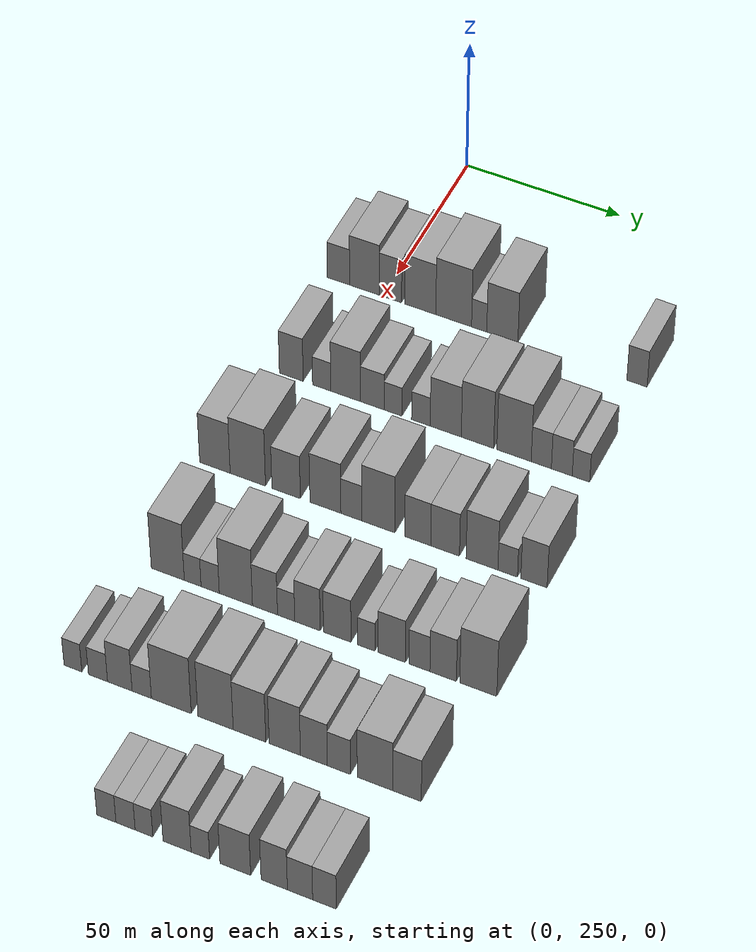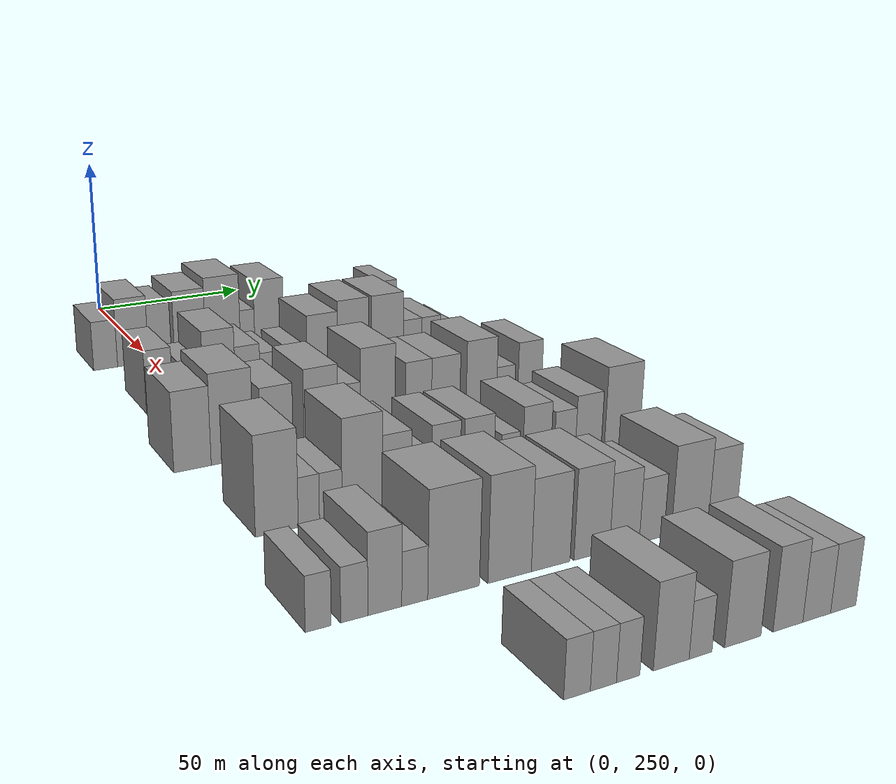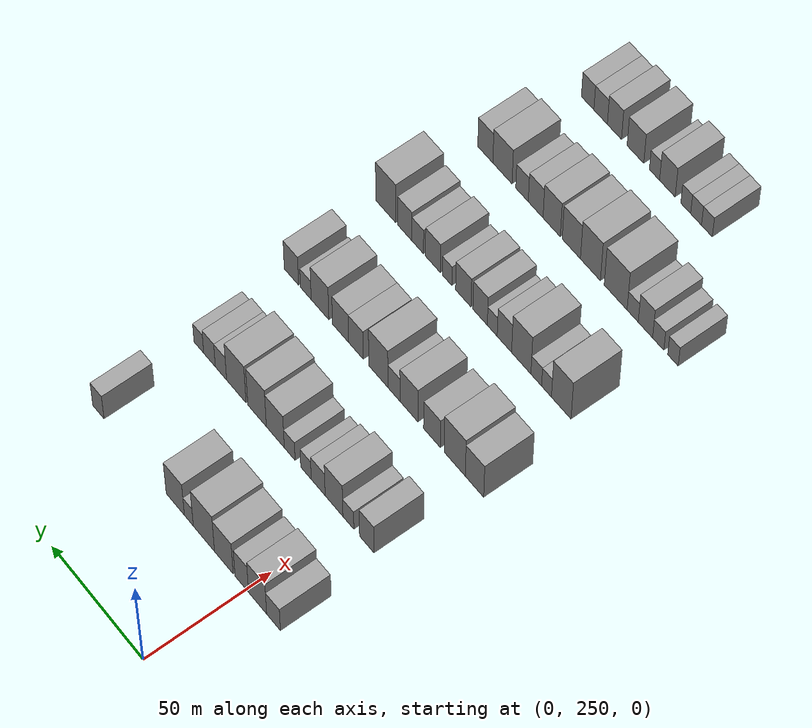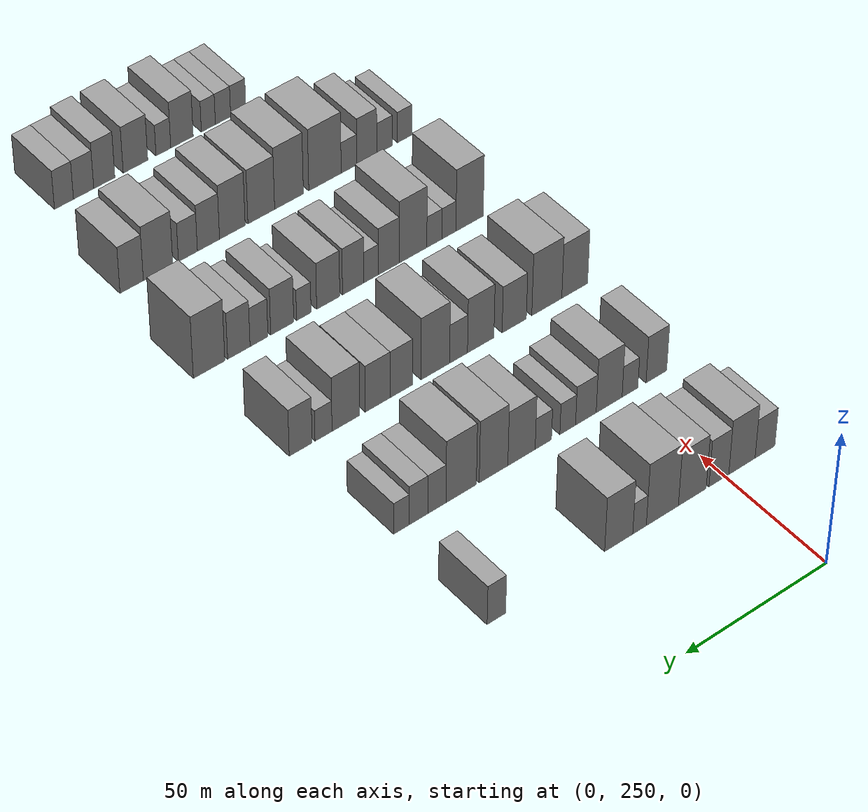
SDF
<sdf version="1.6">
 <world name="default">
  <model name="building_94">
   <static>1</static>
   <pose>50.0000 235.4547 0 0.000000 0.000000 0.000000</pose>
   <link name="link">
    <pose>0 0 7.50 0 0 0</pose>
    <collision name="collision"><geometry><box><size>20.0000 7.2835 15.0000</size></box></geometry></collision>
    <visual name="visual">
     <cast_shadows>0</cast_shadows>
     <geometry><box><size>20.0000 7.2835 15.0000</size></box></geometry>
     <material>
      <script>
       <uri>model://grey_wall/materials/scripts</uri>
       <uri>model://grey_wall/materials/textures</uri>
       <name>vrc/grey_wall</name>
      </script>
     </material>
    </visual>
   </link>
  </model>
  <model name="building_95">
   <static>1</static>
   <pose>50.0000 243.9097 0 0.000000 0.000000 0.000000</pose>
   <link name="link">
    <pose>0 0 10.50 0 0 0</pose>
    <collision name="collision"><geometry><box><size>20.0000 9.6265 21.0000</size></box></geometry></collision>
    <visual name="visual">
     <cast_shadows>0</cast_shadows>
     <geometry><box><size>20.0000 9.6265 21.0000</size></box></geometry>
     <material>
      <script>
       <uri>model://grey_wall/materials/scripts</uri>
       <uri>model://grey_wall/materials/textures</uri>
       <name>vrc/grey_wall</name>
      </script>
     </material>
    </visual>
   </link>
  </model>
  <model name="building_96">
   <static>1</static>
   <pose>50.0000 252.3314 0 0.000000 0.000000 0.000000</pose>
   <link name="link">
    <pose>0 0 9.00 0 0 0</pose>
    <collision name="collision"><geometry><box><size>20.0000 7.2169 18.0000</size></box></geometry></collision>
    <visual name="visual">
     <cast_shadows>0</cast_shadows>
     <geometry><box><size>20.0000 7.2169 18.0000</size></box></geometry>
     <material>
      <script>
       <uri>model://grey_wall/materials/scripts</uri>
       <uri>model://grey_wall/materials/textures</uri>
       <name>vrc/grey_wall</name>
      </script>
     </material>
    </visual>
   </link>
  </model>
  <model name="building_97">
   <static>1</static>
   <pose>50.0000 261.9530 0 0.000000 0.000000 0.000000</pose>
   <link name="link">
    <pose>0 0 10.50 0 0 0</pose>
    <collision name="collision"><geometry><box><size>20.0000 10.0264 21.0000</size></box></geometry></collision>
    <visual name="visual">
     <cast_shadows>0</cast_shadows>
     <geometry><box><size>20.0000 10.0264 21.0000</size></box></geometry>
     <material>
      <script>
       <uri>model://grey_wall/materials/scripts</uri>
       <uri>model://grey_wall/materials/textures</uri>
       <name>vrc/grey_wall</name>
      </script>
     </material>
    </visual>
   </link>
  </model>
  <model name="building_98">
   <static>1</static>
   <pose>50.0000 272.6972 0 0.000000 0.000000 0.000000</pose>
   <link name="link">
    <pose>0 0 12.00 0 0 0</pose>
    <collision name="collision"><geometry><box><size>20.0000 11.4619 24.0000</size></box></geometry></collision>
    <visual name="visual">
     <cast_shadows>0</cast_shadows>
     <geometry><box><size>20.0000 11.4619 24.0000</size></box></geometry>
     <material>
      <script>
       <uri>model://grey_wall/materials/scripts</uri>
       <uri>model://grey_wall/materials/textures</uri>
       <name>vrc/grey_wall</name>
      </script>
     </material>
    </visual>
   </link>
  </model>
  <model name="building_99">
   <static>1</static>
   <pose>50.0000 280.8445 0 0.000000 0.000000 0.000000</pose>
   <link name="link">
    <pose>0 0 6.00 0 0 0</pose>
    <collision name="collision"><geometry><box><size>20.0000 4.8327 12.0000</size></box></geometry></collision>
    <visual name="visual">
     <cast_shadows>0</cast_shadows>
     <geometry><box><size>20.0000 4.8327 12.0000</size></box></geometry>
     <material>
      <script>
       <uri>model://grey_wall/materials/scripts</uri>
       <uri>model://grey_wall/materials/textures</uri>
       <name>vrc/grey_wall</name>
      </script>
     </material>
    </visual>
   </link>
  </model>
  <model name="building_100">
   <static>1</static>
   <pose>50.0000 288.2170 0 0.000000 0.000000 0.000000</pose>
   <link name="link">
    <pose>0 0 10.50 0 0 0</pose>
    <collision name="collision"><geometry><box><size>20.0000 9.9124 21.0000</size></box></geometry></collision>
    <visual name="visual">
     <cast_shadows>0</cast_shadows>
     <geometry><box><size>20.0000 9.9124 21.0000</size></box></geometry>
     <material>
      <script>
       <uri>model://grey_wall/materials/scripts</uri>
       <uri>model://grey_wall/materials/textures</uri>
       <name>vrc/grey_wall</name>
      </script>
     </material>
    </visual>
   </link>
  </model>
  <model name="building_101">
   <static>1</static>
   <pose>50.0000 330.6214 0 0.000000 0.000000 0.000000</pose>
   <link name="link">
    <pose>0 0 7.50 0 0 0</pose>
    <collision name="collision"><geometry><box><size>20.0000 6.2988 15.0000</size></box></geometry></collision>
    <visual name="visual">
     <cast_shadows>0</cast_shadows>
     <geometry><box><size>20.0000 6.2988 15.0000</size></box></geometry>
     <material>
      <script>
       <uri>model://grey_wall/materials/scripts</uri>
       <uri>model://grey_wall/materials/textures</uri>
       <name>vrc/grey_wall</name>
      </script>
     </material>
    </visual>
   </link>
  </model>
  <model name="building_224">
   <static>1</static>
   <pose>90.0000 239.5042 0 0.000000 0.000000 0.000000</pose>
   <link name="link">
    <pose>0 0 9.00 0 0 0</pose>
    <collision name="collision"><geometry><box><size>20.0000 7.6293 18.0000</size></box></geometry></collision>
    <visual name="visual">
     <cast_shadows>0</cast_shadows>
     <geometry><box><size>20.0000 7.6293 18.0000</size></box></geometry>
     <material>
      <script>
       <uri>model://grey_wall/materials/scripts</uri>
       <uri>model://grey_wall/materials/textures</uri>
       <name>vrc/grey_wall</name>
      </script>
     </material>
    </visual>
   </link>
  </model>
  <model name="building_225">
   <static>1</static>
   <pose>90.0000 249.2200 0 0.000000 0.000000 0.000000</pose>
   <link name="link">
    <pose>0 0 6.00 0 0 0</pose>
    <collision name="collision"><geometry><box><size>20.0000 5.8024 12.0000</size></box></geometry></collision>
    <visual name="visual">
     <cast_shadows>0</cast_shadows>
     <geometry><box><size>20.0000 5.8024 12.0000</size></box></geometry>
     <material>
      <script>
       <uri>model://grey_wall/materials/scripts</uri>
       <uri>model://grey_wall/materials/textures</uri>
       <name>vrc/grey_wall</name>
      </script>
     </material>
    </visual>
   </link>
  </model>
  <model name="building_226">
   <static>1</static>
   <pose>90.0000 256.8421 0 0.000000 0.000000 0.000000</pose>
   <link name="link">
    <pose>0 0 10.50 0 0 0</pose>
    <collision name="collision"><geometry><box><size>20.0000 9.4418 21.0000</size></box></geometry></collision>
    <visual name="visual">
     <cast_shadows>0</cast_shadows>
     <geometry><box><size>20.0000 9.4418 21.0000</size></box></geometry>
     <material>
      <script>
       <uri>model://grey_wall/materials/scripts</uri>
       <uri>model://grey_wall/materials/textures</uri>
       <name>vrc/grey_wall</name>
      </script>
     </material>
    </visual>
   </link>
  </model>
  <model name="building_227">
   <static>1</static>
   <pose>90.0000 265.2929 0 0.000000 0.000000 0.000000</pose>
   <link name="link">
    <pose>0 0 7.50 0 0 0</pose>
    <collision name="collision"><geometry><box><size>20.0000 7.4597 15.0000</size></box></geometry></collision>
    <visual name="visual">
     <cast_shadows>0</cast_shadows>
     <geometry><box><size>20.0000 7.4597 15.0000</size></box></geometry>
     <material>
      <script>
       <uri>model://grey_wall/materials/scripts</uri>
       <uri>model://grey_wall/materials/textures</uri>
       <name>vrc/grey_wall</name>
      </script>
     </material>
    </visual>
   </link>
  </model>
  <model name="building_228">
   <static>1</static>
   <pose>90.0000 271.8470 0 0.000000 0.000000 0.000000</pose>
   <link name="link">
    <pose>0 0 6.00 0 0 0</pose>
    <collision name="collision"><geometry><box><size>20.0000 5.6486 12.0000</size></box></geometry></collision>
    <visual name="visual">
     <cast_shadows>0</cast_shadows>
     <geometry><box><size>20.0000 5.6486 12.0000</size></box></geometry>
     <material>
      <script>
       <uri>model://grey_wall/materials/scripts</uri>
       <uri>model://grey_wall/materials/textures</uri>
       <name>vrc/grey_wall</name>
      </script>
     </material>
    </visual>
   </link>
  </model>
  <model name="building_229">
   <static>1</static>
   <pose>90.0000 280.5936 0 0.000000 0.000000 0.000000</pose>
   <link name="link">
    <pose>0 0 6.00 0 0 0</pose>
    <collision name="collision"><geometry><box><size>20.0000 5.8447 12.0000</size></box></geometry></collision>
    <visual name="visual">
     <cast_shadows>0</cast_shadows>
     <geometry><box><size>20.0000 5.8447 12.0000</size></box></geometry>
     <material>
      <script>
       <uri>model://grey_wall/materials/scripts</uri>
       <uri>model://grey_wall/materials/textures</uri>
       <name>vrc/grey_wall</name>
      </script>
     </material>
    </visual>
   </link>
  </model>
  <model name="building_230">
   <static>1</static>
   <pose>90.0000 288.3706 0 0.000000 0.000000 0.000000</pose>
   <link name="link">
    <pose>0 0 10.50 0 0 0</pose>
    <collision name="collision"><geometry><box><size>20.0000 9.7092 21.0000</size></box></geometry></collision>
    <visual name="visual">
     <cast_shadows>0</cast_shadows>
     <geometry><box><size>20.0000 9.7092 21.0000</size></box></geometry>
     <material>
      <script>
       <uri>model://grey_wall/materials/scripts</uri>
       <uri>model://grey_wall/materials/textures</uri>
       <name>vrc/grey_wall</name>
      </script>
     </material>
    </visual>
   </link>
  </model>
  <model name="building_231">
   <static>1</static>
   <pose>90.0000 298.2600 0 0.000000 0.000000 0.000000</pose>
   <link name="link">
    <pose>0 0 12.00 0 0 0</pose>
    <collision name="collision"><geometry><box><size>20.0000 10.0698 24.0000</size></box></geometry></collision>
    <visual name="visual">
     <cast_shadows>0</cast_shadows>
     <geometry><box><size>20.0000 10.0698 24.0000</size></box></geometry>
     <material>
      <script>
       <uri>model://grey_wall/materials/scripts</uri>
       <uri>model://grey_wall/materials/textures</uri>
       <name>vrc/grey_wall</name>
      </script>
     </material>
    </visual>
   </link>
  </model>
  <model name="building_232">
   <static>1</static>
   <pose>90.0000 309.6060 0 0.000000 0.000000 0.000000</pose>
   <link name="link">
    <pose>0 0 12.00 0 0 0</pose>
    <collision name="collision"><geometry><box><size>20.0000 10.6221 24.0000</size></box></geometry></collision>
    <visual name="visual">
     <cast_shadows>0</cast_shadows>
     <geometry><box><size>20.0000 10.6221 24.0000</size></box></geometry>
     <material>
      <script>
       <uri>model://grey_wall/materials/scripts</uri>
       <uri>model://grey_wall/materials/textures</uri>
       <name>vrc/grey_wall</name>
      </script>
     </material>
    </visual>
   </link>
  </model>
  <model name="building_233">
   <static>1</static>
   <pose>90.0000 318.0301 0 0.000000 0.000000 0.000000</pose>
   <link name="link">
    <pose>0 0 7.50 0 0 0</pose>
    <collision name="collision"><geometry><box><size>20.0000 6.2261 15.0000</size></box></geometry></collision>
    <visual name="visual">
     <cast_shadows>0</cast_shadows>
     <geometry><box><size>20.0000 6.2261 15.0000</size></box></geometry>
     <material>
      <script>
       <uri>model://grey_wall/materials/scripts</uri>
       <uri>model://grey_wall/materials/textures</uri>
       <name>vrc/grey_wall</name>
      </script>
     </material>
    </visual>
   </link>
  </model>
  <model name="building_234">
   <static>1</static>
   <pose>90.0000 324.3517 0 0.000000 0.000000 0.000000</pose>
   <link name="link">
    <pose>0 0 7.50 0 0 0</pose>
    <collision name="collision"><geometry><box><size>20.0000 6.4171 15.0000</size></box></geometry></collision>
    <visual name="visual">
     <cast_shadows>0</cast_shadows>
     <geometry><box><size>20.0000 6.4171 15.0000</size></box></geometry>
     <material>
      <script>
       <uri>model://grey_wall/materials/scripts</uri>
       <uri>model://grey_wall/materials/textures</uri>
       <name>vrc/grey_wall</name>
      </script>
     </material>
    </visual>
   </link>
  </model>
  <model name="building_235">
   <static>1</static>
   <pose>90.0000 330.2365 0 0.000000 0.000000 0.000000</pose>
   <link name="link">
    <pose>0 0 6.00 0 0 0</pose>
    <collision name="collision"><geometry><box><size>20.0000 5.3525 12.0000</size></box></geometry></collision>
    <visual name="visual">
     <cast_shadows>0</cast_shadows>
     <geometry><box><size>20.0000 5.3525 12.0000</size></box></geometry>
     <material>
      <script>
       <uri>model://grey_wall/materials/scripts</uri>
       <uri>model://grey_wall/materials/textures</uri>
       <name>vrc/grey_wall</name>
      </script>
     </material>
    </visual>
   </link>
  </model>
  <model name="building_366">
   <static>1</static>
   <pose>130.0000 235.0115 0 0.000000 0.000000 0.000000</pose>
   <link name="link">
    <pose>0 0 10.50 0 0 0</pose>
    <collision name="collision"><geometry><box><size>20.0000 9.6157 21.0000</size></box></geometry></collision>
    <visual name="visual">
     <cast_shadows>0</cast_shadows>
     <geometry><box><size>20.0000 9.6157 21.0000</size></box></geometry>
     <material>
      <script>
       <uri>model://grey_wall/materials/scripts</uri>
       <uri>model://grey_wall/materials/textures</uri>
       <name>vrc/grey_wall</name>
      </script>
     </material>
    </visual>
   </link>
  </model>
  <model name="building_367">
   <static>1</static>
   <pose>130.0000 245.3782 0 0.000000 0.000000 0.000000</pose>
   <link name="link">
    <pose>0 0 12.00 0 0 0</pose>
    <collision name="collision"><geometry><box><size>20.0000 11.1177 24.0000</size></box></geometry></collision>
    <visual name="visual">
     <cast_shadows>0</cast_shadows>
     <geometry><box><size>20.0000 11.1177 24.0000</size></box></geometry>
     <material>
      <script>
       <uri>model://grey_wall/materials/scripts</uri>
       <uri>model://grey_wall/materials/textures</uri>
       <name>vrc/grey_wall</name>
      </script>
     </material>
    </visual>
   </link>
  </model>
  <model name="building_368">
   <static>1</static>
   <pose>130.0000 257.3779 0 0.000000 0.000000 0.000000</pose>
   <link name="link">
    <pose>0 0 9.00 0 0 0</pose>
    <collision name="collision"><geometry><box><size>20.0000 8.8816 18.0000</size></box></geometry></collision>
    <visual name="visual">
     <cast_shadows>0</cast_shadows>
     <geometry><box><size>20.0000 8.8816 18.0000</size></box></geometry>
     <material>
      <script>
       <uri>model://grey_wall/materials/scripts</uri>
       <uri>model://grey_wall/materials/textures</uri>
       <name>vrc/grey_wall</name>
      </script>
     </material>
    </visual>
   </link>
  </model>
  <model name="building_369">
   <static>1</static>
   <pose>130.0000 269.6115 0 0.000000 0.000000 0.000000</pose>
   <link name="link">
    <pose>0 0 10.50 0 0 0</pose>
    <collision name="collision"><geometry><box><size>20.0000 9.5856 21.0000</size></box></geometry></collision>
    <visual name="visual">
     <cast_shadows>0</cast_shadows>
     <geometry><box><size>20.0000 9.5856 21.0000</size></box></geometry>
     <material>
      <script>
       <uri>model://grey_wall/materials/scripts</uri>
       <uri>model://grey_wall/materials/textures</uri>
       <name>vrc/grey_wall</name>
      </script>
     </material>
    </visual>
   </link>
  </model>
  <model name="building_370">
   <static>1</static>
   <pose>130.0000 277.6211 0 0.000000 0.000000 0.000000</pose>
   <link name="link">
    <pose>0 0 7.50 0 0 0</pose>
    <collision name="collision"><geometry><box><size>20.0000 6.4337 15.0000</size></box></geometry></collision>
    <visual name="visual">
     <cast_shadows>0</cast_shadows>
     <geometry><box><size>20.0000 6.4337 15.0000</size></box></geometry>
     <material>
      <script>
       <uri>model://grey_wall/materials/scripts</uri>
       <uri>model://grey_wall/materials/textures</uri>
       <name>vrc/grey_wall</name>
      </script>
     </material>
    </visual>
   </link>
  </model>
  <model name="building_371">
   <static>1</static>
   <pose>130.0000 285.9586 0 0.000000 0.000000 0.000000</pose>
   <link name="link">
    <pose>0 0 12.00 0 0 0</pose>
    <collision name="collision"><geometry><box><size>20.0000 10.2414 24.0000</size></box></geometry></collision>
    <visual name="visual">
     <cast_shadows>0</cast_shadows>
     <geometry><box><size>20.0000 10.2414 24.0000</size></box></geometry>
     <material>
      <script>
       <uri>model://grey_wall/materials/scripts</uri>
       <uri>model://grey_wall/materials/textures</uri>
       <name>vrc/grey_wall</name>
      </script>
     </material>
    </visual>
   </link>
  </model>
  <model name="building_372">
   <static>1</static>
   <pose>130.0000 298.0460 0 0.000000 0.000000 0.000000</pose>
   <link name="link">
    <pose>0 0 9.00 0 0 0</pose>
    <collision name="collision"><geometry><box><size>20.0000 7.9334 18.0000</size></box></geometry></collision>
    <visual name="visual">
     <cast_shadows>0</cast_shadows>
     <geometry><box><size>20.0000 7.9334 18.0000</size></box></geometry>
     <material>
      <script>
       <uri>model://grey_wall/materials/scripts</uri>
       <uri>model://grey_wall/materials/textures</uri>
       <name>vrc/grey_wall</name>
      </script>
     </material>
    </visual>
   </link>
  </model>
  <model name="building_373">
   <static>1</static>
   <pose>130.0000 306.3938 0 0.000000 0.000000 0.000000</pose>
   <link name="link">
    <pose>0 0 9.00 0 0 0</pose>
    <collision name="collision"><geometry><box><size>20.0000 8.7620 18.0000</size></box></geometry></collision>
    <visual name="visual">
     <cast_shadows>0</cast_shadows>
     <geometry><box><size>20.0000 8.7620 18.0000</size></box></geometry>
     <material>
      <script>
       <uri>model://grey_wall/materials/scripts</uri>
       <uri>model://grey_wall/materials/textures</uri>
       <name>vrc/grey_wall</name>
      </script>
     </material>
    </visual>
   </link>
  </model>
  <model name="building_374">
   <static>1</static>
   <pose>130.0000 317.5948 0 0.000000 0.000000 0.000000</pose>
   <link name="link">
    <pose>0 0 10.50 0 0 0</pose>
    <collision name="collision"><geometry><box><size>20.0000 9.6400 21.0000</size></box></geometry></collision>
    <visual name="visual">
     <cast_shadows>0</cast_shadows>
     <geometry><box><size>20.0000 9.6400 21.0000</size></box></geometry>
     <material>
      <script>
       <uri>model://grey_wall/materials/scripts</uri>
       <uri>model://grey_wall/materials/textures</uri>
       <name>vrc/grey_wall</name>
      </script>
     </material>
    </visual>
   </link>
  </model>
  <model name="building_375">
   <static>1</static>
   <pose>130.0000 325.3711 0 0.000000 0.000000 0.000000</pose>
   <link name="link">
    <pose>0 0 6.00 0 0 0</pose>
    <collision name="collision"><geometry><box><size>20.0000 5.9127 12.0000</size></box></geometry></collision>
    <visual name="visual">
     <cast_shadows>0</cast_shadows>
     <geometry><box><size>20.0000 5.9127 12.0000</size></box></geometry>
     <material>
      <script>
       <uri>model://grey_wall/materials/scripts</uri>
       <uri>model://grey_wall/materials/textures</uri>
       <name>vrc/grey_wall</name>
      </script>
     </material>
    </visual>
   </link>
  </model>
  <model name="building_376">
   <static>1</static>
   <pose>130.0000 333.2766 0 0.000000 0.000000 0.000000</pose>
   <link name="link">
    <pose>0 0 9.00 0 0 0</pose>
    <collision name="collision"><geometry><box><size>20.0000 7.8982 18.0000</size></box></geometry></collision>
    <visual name="visual">
     <cast_shadows>0</cast_shadows>
     <geometry><box><size>20.0000 7.8982 18.0000</size></box></geometry>
     <material>
      <script>
       <uri>model://grey_wall/materials/scripts</uri>
       <uri>model://grey_wall/materials/textures</uri>
       <name>vrc/grey_wall</name>
      </script>
     </material>
    </visual>
   </link>
  </model>
  <model name="building_503">
   <static>1</static>
   <pose>170.0000 240.6176 0 0.000000 0.000000 0.000000</pose>
   <link name="link">
    <pose>0 0 12.00 0 0 0</pose>
    <collision name="collision"><geometry><box><size>20.0000 10.2122 24.0000</size></box></geometry></collision>
    <visual name="visual">
     <cast_shadows>0</cast_shadows>
     <geometry><box><size>20.0000 10.2122 24.0000</size></box></geometry>
     <material>
      <script>
       <uri>model://grey_wall/materials/scripts</uri>
       <uri>model://grey_wall/materials/textures</uri>
       <name>vrc/grey_wall</name>
      </script>
     </material>
    </visual>
   </link>
  </model>
  <model name="building_504">
   <static>1</static>
   <pose>170.0000 248.3047 0 0.000000 0.000000 0.000000</pose>
   <link name="link">
    <pose>0 0 6.00 0 0 0</pose>
    <collision name="collision"><geometry><box><size>20.0000 5.1620 12.0000</size></box></geometry></collision>
    <visual name="visual">
     <cast_shadows>0</cast_shadows>
     <geometry><box><size>20.0000 5.1620 12.0000</size></box></geometry>
     <material>
      <script>
       <uri>model://grey_wall/materials/scripts</uri>
       <uri>model://grey_wall/materials/textures</uri>
       <name>vrc/grey_wall</name>
      </script>
     </material>
    </visual>
   </link>
  </model>
  <model name="building_505">
   <static>1</static>
   <pose>170.0000 253.6918 0 0.000000 0.000000 0.000000</pose>
   <link name="link">
    <pose>0 0 6.00 0 0 0</pose>
    <collision name="collision"><geometry><box><size>20.0000 5.6122 12.0000</size></box></geometry></collision>
    <visual name="visual">
     <cast_shadows>0</cast_shadows>
     <geometry><box><size>20.0000 5.6122 12.0000</size></box></geometry>
     <material>
      <script>
       <uri>model://grey_wall/materials/scripts</uri>
       <uri>model://grey_wall/materials/textures</uri>
       <name>vrc/grey_wall</name>
      </script>
     </material>
    </visual>
   </link>
  </model>
  <model name="building_506">
   <static>1</static>
   <pose>170.0000 261.5835 0 0.000000 0.000000 0.000000</pose>
   <link name="link">
    <pose>0 0 12.00 0 0 0</pose>
    <collision name="collision"><geometry><box><size>20.0000 10.1713 24.0000</size></box></geometry></collision>
    <visual name="visual">
     <cast_shadows>0</cast_shadows>
     <geometry><box><size>20.0000 10.1713 24.0000</size></box></geometry>
     <material>
      <script>
       <uri>model://grey_wall/materials/scripts</uri>
       <uri>model://grey_wall/materials/textures</uri>
       <name>vrc/grey_wall</name>
      </script>
     </material>
    </visual>
   </link>
  </model>
  <model name="building_507">
   <static>1</static>
   <pose>170.0000 270.4888 0 0.000000 0.000000 0.000000</pose>
   <link name="link">
    <pose>0 0 9.00 0 0 0</pose>
    <collision name="collision"><geometry><box><size>20.0000 7.6393 18.0000</size></box></geometry></collision>
    <visual name="visual">
     <cast_shadows>0</cast_shadows>
     <geometry><box><size>20.0000 7.6393 18.0000</size></box></geometry>
     <material>
      <script>
       <uri>model://grey_wall/materials/scripts</uri>
       <uri>model://grey_wall/materials/textures</uri>
       <name>vrc/grey_wall</name>
      </script>
     </material>
    </visual>
   </link>
  </model>
  <model name="building_508">
   <static>1</static>
   <pose>170.0000 276.9290 0 0.000000 0.000000 0.000000</pose>
   <link name="link">
    <pose>0 0 6.00 0 0 0</pose>
    <collision name="collision"><geometry><box><size>20.0000 5.2411 12.0000</size></box></geometry></collision>
    <visual name="visual">
     <cast_shadows>0</cast_shadows>
     <geometry><box><size>20.0000 5.2411 12.0000</size></box></geometry>
     <material>
      <script>
       <uri>model://grey_wall/materials/scripts</uri>
       <uri>model://grey_wall/materials/textures</uri>
       <name>vrc/grey_wall</name>
      </script>
     </material>
    </visual>
   </link>
  </model>
  <model name="building_509">
   <static>1</static>
   <pose>170.0000 283.4026 0 0.000000 0.000000 0.000000</pose>
   <link name="link">
    <pose>0 0 9.00 0 0 0</pose>
    <collision name="collision"><geometry><box><size>20.0000 7.7061 18.0000</size></box></geometry></collision>
    <visual name="visual">
     <cast_shadows>0</cast_shadows>
     <geometry><box><size>20.0000 7.7061 18.0000</size></box></geometry>
     <material>
      <script>
       <uri>model://grey_wall/materials/scripts</uri>
       <uri>model://grey_wall/materials/textures</uri>
       <name>vrc/grey_wall</name>
      </script>
     </material>
    </visual>
   </link>
  </model>
  <model name="building_510">
   <static>1</static>
   <pose>170.0000 292.4004 0 0.000000 0.000000 0.000000</pose>
   <link name="link">
    <pose>0 0 9.00 0 0 0</pose>
    <collision name="collision"><geometry><box><size>20.0000 8.2895 18.0000</size></box></geometry></collision>
    <visual name="visual">
     <cast_shadows>0</cast_shadows>
     <geometry><box><size>20.0000 8.2895 18.0000</size></box></geometry>
     <material>
      <script>
       <uri>model://grey_wall/materials/scripts</uri>
       <uri>model://grey_wall/materials/textures</uri>
       <name>vrc/grey_wall</name>
      </script>
     </material>
    </visual>
   </link>
  </model>
  <model name="building_511">
   <static>1</static>
   <pose>170.0000 301.1281 0 0.000000 0.000000 0.000000</pose>
   <link name="link">
    <pose>0 0 6.00 0 0 0</pose>
    <collision name="collision"><geometry><box><size>20.0000 5.1659 12.0000</size></box></geometry></collision>
    <visual name="visual">
     <cast_shadows>0</cast_shadows>
     <geometry><box><size>20.0000 5.1659 12.0000</size></box></geometry>
     <material>
      <script>
       <uri>model://grey_wall/materials/scripts</uri>
       <uri>model://grey_wall/materials/textures</uri>
       <name>vrc/grey_wall</name>
      </script>
     </material>
    </visual>
   </link>
  </model>
  <model name="building_512">
   <static>1</static>
   <pose>170.0000 308.7849 0 0.000000 0.000000 0.000000</pose>
   <link name="link">
    <pose>0 0 9.00 0 0 0</pose>
    <collision name="collision"><geometry><box><size>20.0000 8.1478 18.0000</size></box></geometry></collision>
    <visual name="visual">
     <cast_shadows>0</cast_shadows>
     <geometry><box><size>20.0000 8.1478 18.0000</size></box></geometry>
     <material>
      <script>
       <uri>model://grey_wall/materials/scripts</uri>
       <uri>model://grey_wall/materials/textures</uri>
       <name>vrc/grey_wall</name>
      </script>
     </material>
    </visual>
   </link>
  </model>
  <model name="building_513">
   <static>1</static>
   <pose>170.0000 316.9971 0 0.000000 0.000000 0.000000</pose>
   <link name="link">
    <pose>0 0 7.50 0 0 0</pose>
    <collision name="collision"><geometry><box><size>20.0000 6.2766 15.0000</size></box></geometry></collision>
    <visual name="visual">
     <cast_shadows>0</cast_shadows>
     <geometry><box><size>20.0000 6.2766 15.0000</size></box></geometry>
     <material>
      <script>
       <uri>model://grey_wall/materials/scripts</uri>
       <uri>model://grey_wall/materials/textures</uri>
       <name>vrc/grey_wall</name>
      </script>
     </material>
    </visual>
   </link>
  </model>
  <model name="building_514">
   <static>1</static>
   <pose>170.0000 324.0505 0 0.000000 0.000000 0.000000</pose>
   <link name="link">
    <pose>0 0 9.00 0 0 0</pose>
    <collision name="collision"><geometry><box><size>20.0000 7.8302 18.0000</size></box></geometry></collision>
    <visual name="visual">
     <cast_shadows>0</cast_shadows>
     <geometry><box><size>20.0000 7.8302 18.0000</size></box></geometry>
     <material>
      <script>
       <uri>model://grey_wall/materials/scripts</uri>
       <uri>model://grey_wall/materials/textures</uri>
       <name>vrc/grey_wall</name>
      </script>
     </material>
    </visual>
   </link>
  </model>
  <model name="building_515">
   <static>1</static>
   <pose>170.0000 334.4318 0 0.000000 0.000000 0.000000</pose>
   <link name="link">
    <pose>0 0 12.00 0 0 0</pose>
    <collision name="collision"><geometry><box><size>20.0000 10.9324 24.0000</size></box></geometry></collision>
    <visual name="visual">
     <cast_shadows>0</cast_shadows>
     <geometry><box><size>20.0000 10.9324 24.0000</size></box></geometry>
     <material>
      <script>
       <uri>model://grey_wall/materials/scripts</uri>
       <uri>model://grey_wall/materials/textures</uri>
       <name>vrc/grey_wall</name>
      </script>
     </material>
    </visual>
   </link>
  </model>
  <model name="building_647">
   <static>1</static>
   <pose>210.0000 232.3778 0 0.000000 0.000000 0.000000</pose>
   <link name="link">
    <pose>0 0 6.00 0 0 0</pose>
    <collision name="collision"><geometry><box><size>20.0000 5.4293 12.0000</size></box></geometry></collision>
    <visual name="visual">
     <cast_shadows>0</cast_shadows>
     <geometry><box><size>20.0000 5.4293 12.0000</size></box></geometry>
     <material>
      <script>
       <uri>model://grey_wall/materials/scripts</uri>
       <uri>model://grey_wall/materials/textures</uri>
       <name>vrc/grey_wall</name>
      </script>
     </material>
    </visual>
   </link>
  </model>
  <model name="building_648">
   <static>1</static>
   <pose>210.0000 240.0018 0 0.000000 0.000000 0.000000</pose>
   <link name="link">
    <pose>0 0 6.00 0 0 0</pose>
    <collision name="collision"><geometry><box><size>20.0000 5.8187 12.0000</size></box></geometry></collision>
    <visual name="visual">
     <cast_shadows>0</cast_shadows>
     <geometry><box><size>20.0000 5.8187 12.0000</size></box></geometry>
     <material>
      <script>
       <uri>model://grey_wall/materials/scripts</uri>
       <uri>model://grey_wall/materials/textures</uri>
       <name>vrc/grey_wall</name>
      </script>
     </material>
    </visual>
   </link>
  </model>
  <model name="building_649">
   <static>1</static>
   <pose>210.0000 246.6503 0 0.000000 0.000000 0.000000</pose>
   <link name="link">
    <pose>0 0 9.00 0 0 0</pose>
    <collision name="collision"><geometry><box><size>20.0000 7.4784 18.0000</size></box></geometry></collision>
    <visual name="visual">
     <cast_shadows>0</cast_shadows>
     <geometry><box><size>20.0000 7.4784 18.0000</size></box></geometry>
     <material>
      <script>
       <uri>model://grey_wall/materials/scripts</uri>
       <uri>model://grey_wall/materials/textures</uri>
       <name>vrc/grey_wall</name>
      </script>
     </material>
    </visual>
   </link>
  </model>
  <model name="building_650">
   <static>1</static>
   <pose>210.0000 253.3043 0 0.000000 0.000000 0.000000</pose>
   <link name="link">
    <pose>0 0 6.00 0 0 0</pose>
    <collision name="collision"><geometry><box><size>20.0000 5.8296 12.0000</size></box></geometry></collision>
    <visual name="visual">
     <cast_shadows>0</cast_shadows>
     <geometry><box><size>20.0000 5.8296 12.0000</size></box></geometry>
     <material>
      <script>
       <uri>model://grey_wall/materials/scripts</uri>
       <uri>model://grey_wall/materials/textures</uri>
       <name>vrc/grey_wall</name>
      </script>
     </material>
    </visual>
   </link>
  </model>
  <model name="building_651">
   <static>1</static>
   <pose>210.0000 262.2163 0 0.000000 0.000000 0.000000</pose>
   <link name="link">
    <pose>0 0 12.00 0 0 0</pose>
    <collision name="collision"><geometry><box><size>20.0000 11.9945 24.0000</size></box></geometry></collision>
    <visual name="visual">
     <cast_shadows>0</cast_shadows>
     <geometry><box><size>20.0000 11.9945 24.0000</size></box></geometry>
     <material>
      <script>
       <uri>model://grey_wall/materials/scripts</uri>
       <uri>model://grey_wall/materials/textures</uri>
       <name>vrc/grey_wall</name>
      </script>
     </material>
    </visual>
   </link>
  </model>
  <model name="building_652">
   <static>1</static>
   <pose>210.0000 275.4855 0 0.000000 0.000000 0.000000</pose>
   <link name="link">
    <pose>0 0 12.00 0 0 0</pose>
    <collision name="collision"><geometry><box><size>20.0000 10.5439 24.0000</size></box></geometry></collision>
    <visual name="visual">
     <cast_shadows>0</cast_shadows>
     <geometry><box><size>20.0000 10.5439 24.0000</size></box></geometry>
     <material>
      <script>
       <uri>model://grey_wall/materials/scripts</uri>
       <uri>model://grey_wall/materials/textures</uri>
       <name>vrc/grey_wall</name>
      </script>
     </material>
    </visual>
   </link>
  </model>
  <model name="building_653">
   <static>1</static>
   <pose>210.0000 285.6100 0 0.000000 0.000000 0.000000</pose>
   <link name="link">
    <pose>0 0 10.50 0 0 0</pose>
    <collision name="collision"><geometry><box><size>20.0000 9.7050 21.0000</size></box></geometry></collision>
    <visual name="visual">
     <cast_shadows>0</cast_shadows>
     <geometry><box><size>20.0000 9.7050 21.0000</size></box></geometry>
     <material>
      <script>
       <uri>model://grey_wall/materials/scripts</uri>
       <uri>model://grey_wall/materials/textures</uri>
       <name>vrc/grey_wall</name>
      </script>
     </material>
    </visual>
   </link>
  </model>
  <model name="building_654">
   <static>1</static>
   <pose>210.0000 296.0754 0 0.000000 0.000000 0.000000</pose>
   <link name="link">
    <pose>0 0 10.50 0 0 0</pose>
    <collision name="collision"><geometry><box><size>20.0000 9.2256 21.0000</size></box></geometry></collision>
    <visual name="visual">
     <cast_shadows>0</cast_shadows>
     <geometry><box><size>20.0000 9.2256 21.0000</size></box></geometry>
     <material>
      <script>
       <uri>model://grey_wall/materials/scripts</uri>
       <uri>model://grey_wall/materials/textures</uri>
       <name>vrc/grey_wall</name>
      </script>
     </material>
    </visual>
   </link>
  </model>
  <model name="building_655">
   <static>1</static>
   <pose>210.0000 304.6527 0 0.000000 0.000000 0.000000</pose>
   <link name="link">
    <pose>0 0 9.00 0 0 0</pose>
    <collision name="collision"><geometry><box><size>20.0000 7.9290 18.0000</size></box></geometry></collision>
    <visual name="visual">
     <cast_shadows>0</cast_shadows>
     <geometry><box><size>20.0000 7.9290 18.0000</size></box></geometry>
     <material>
      <script>
       <uri>model://grey_wall/materials/scripts</uri>
       <uri>model://grey_wall/materials/textures</uri>
       <name>vrc/grey_wall</name>
      </script>
     </material>
    </visual>
   </link>
  </model>
  <model name="building_656">
   <static>1</static>
   <pose>210.0000 311.9929 0 0.000000 0.000000 0.000000</pose>
   <link name="link">
    <pose>0 0 7.50 0 0 0</pose>
    <collision name="collision"><geometry><box><size>20.0000 6.7514 15.0000</size></box></geometry></collision>
    <visual name="visual">
     <cast_shadows>0</cast_shadows>
     <geometry><box><size>20.0000 6.7514 15.0000</size></box></geometry>
     <material>
      <script>
       <uri>model://grey_wall/materials/scripts</uri>
       <uri>model://grey_wall/materials/textures</uri>
       <name>vrc/grey_wall</name>
      </script>
     </material>
    </visual>
   </link>
  </model>
  <model name="building_657">
   <static>1</static>
   <pose>210.0000 322.5721 0 0.000000 0.000000 0.000000</pose>
   <link name="link">
    <pose>0 0 10.50 0 0 0</pose>
    <collision name="collision"><geometry><box><size>20.0000 10.4071 21.0000</size></box></geometry></collision>
    <visual name="visual">
     <cast_shadows>0</cast_shadows>
     <geometry><box><size>20.0000 10.4071 21.0000</size></box></geometry>
     <material>
      <script>
       <uri>model://grey_wall/materials/scripts</uri>
       <uri>model://grey_wall/materials/textures</uri>
       <name>vrc/grey_wall</name>
      </script>
     </material>
    </visual>
   </link>
  </model>
  <model name="building_658">
   <static>1</static>
   <pose>210.0000 331.8721 0 0.000000 0.000000 0.000000</pose>
   <link name="link">
    <pose>0 0 9.00 0 0 0</pose>
    <collision name="collision"><geometry><box><size>20.0000 8.1927 18.0000</size></box></geometry></collision>
    <visual name="visual">
     <cast_shadows>0</cast_shadows>
     <geometry><box><size>20.0000 8.1927 18.0000</size></box></geometry>
     <material>
      <script>
       <uri>model://grey_wall/materials/scripts</uri>
       <uri>model://grey_wall/materials/textures</uri>
       <name>vrc/grey_wall</name>
      </script>
     </material>
    </visual>
   </link>
  </model>
  <model name="building_783">
   <static>1</static>
   <pose>250.0000 263.6373 0 0.000000 0.000000 0.000000</pose>
   <link name="link">
    <pose>0 0 6.00 0 0 0</pose>
    <collision name="collision"><geometry><box><size>20.0000 5.6426 12.0000</size></box></geometry></collision>
    <visual name="visual">
     <cast_shadows>0</cast_shadows>
     <geometry><box><size>20.0000 5.6426 12.0000</size></box></geometry>
     <material>
      <script>
       <uri>model://grey_wall/materials/scripts</uri>
       <uri>model://grey_wall/materials/textures</uri>
       <name>vrc/grey_wall</name>
      </script>
     </material>
    </visual>
   </link>
  </model>
  <model name="building_784">
   <static>1</static>
   <pose>250.0000 269.2895 0 0.000000 0.000000 0.000000</pose>
   <link name="link">
    <pose>0 0 6.00 0 0 0</pose>
    <collision name="collision"><geometry><box><size>20.0000 5.6617 12.0000</size></box></geometry></collision>
    <visual name="visual">
     <cast_shadows>0</cast_shadows>
     <geometry><box><size>20.0000 5.6617 12.0000</size></box></geometry>
     <material>
      <script>
       <uri>model://grey_wall/materials/scripts</uri>
       <uri>model://grey_wall/materials/textures</uri>
       <name>vrc/grey_wall</name>
      </script>
     </material>
    </visual>
   </link>
  </model>
  <model name="building_785">
   <static>1</static>
   <pose>250.0000 274.7117 0 0.000000 0.000000 0.000000</pose>
   <link name="link">
    <pose>0 0 6.00 0 0 0</pose>
    <collision name="collision"><geometry><box><size>20.0000 5.1826 12.0000</size></box></geometry></collision>
    <visual name="visual">
     <cast_shadows>0</cast_shadows>
     <geometry><box><size>20.0000 5.1826 12.0000</size></box></geometry>
     <material>
      <script>
       <uri>model://grey_wall/materials/scripts</uri>
       <uri>model://grey_wall/materials/textures</uri>
       <name>vrc/grey_wall</name>
      </script>
     </material>
    </visual>
   </link>
  </model>
  <model name="building_786">
   <static>1</static>
   <pose>250.0000 284.4131 0 0.000000 0.000000 0.000000</pose>
   <link name="link">
    <pose>0 0 9.00 0 0 0</pose>
    <collision name="collision"><geometry><box><size>20.0000 8.2203 18.0000</size></box></geometry></collision>
    <visual name="visual">
     <cast_shadows>0</cast_shadows>
     <geometry><box><size>20.0000 8.2203 18.0000</size></box></geometry>
     <material>
      <script>
       <uri>model://grey_wall/materials/scripts</uri>
       <uri>model://grey_wall/materials/textures</uri>
       <name>vrc/grey_wall</name>
      </script>
     </material>
    </visual>
   </link>
  </model>
  <model name="building_787">
   <static>1</static>
   <pose>250.0000 291.2175 0 0.000000 0.000000 0.000000</pose>
   <link name="link">
    <pose>0 0 6.00 0 0 0</pose>
    <collision name="collision"><geometry><box><size>20.0000 5.3886 12.0000</size></box></geometry></collision>
    <visual name="visual">
     <cast_shadows>0</cast_shadows>
     <geometry><box><size>20.0000 5.3886 12.0000</size></box></geometry>
     <material>
      <script>
       <uri>model://grey_wall/materials/scripts</uri>
       <uri>model://grey_wall/materials/textures</uri>
       <name>vrc/grey_wall</name>
      </script>
     </material>
    </visual>
   </link>
  </model>
  <model name="building_788">
   <static>1</static>
   <pose>250.0000 301.3556 0 0.000000 0.000000 0.000000</pose>
   <link name="link">
    <pose>0 0 9.00 0 0 0</pose>
    <collision name="collision"><geometry><box><size>20.0000 8.8875 18.0000</size></box></geometry></collision>
    <visual name="visual">
     <cast_shadows>0</cast_shadows>
     <geometry><box><size>20.0000 8.8875 18.0000</size></box></geometry>
     <material>
      <script>
       <uri>model://grey_wall/materials/scripts</uri>
       <uri>model://grey_wall/materials/textures</uri>
       <name>vrc/grey_wall</name>
      </script>
     </material>
    </visual>
   </link>
  </model>
  <model name="building_789">
   <static>1</static>
   <pose>250.0000 312.5865 0 0.000000 0.000000 0.000000</pose>
   <link name="link">
    <pose>0 0 9.00 0 0 0</pose>
    <collision name="collision"><geometry><box><size>20.0000 7.5742 18.0000</size></box></geometry></collision>
    <visual name="visual">
     <cast_shadows>0</cast_shadows>
     <geometry><box><size>20.0000 7.5742 18.0000</size></box></geometry>
     <material>
      <script>
       <uri>model://grey_wall/materials/scripts</uri>
       <uri>model://grey_wall/materials/textures</uri>
       <name>vrc/grey_wall</name>
      </script>
     </material>
    </visual>
   </link>
  </model>
  <model name="building_790">
   <static>1</static>
   <pose>250.0000 319.9937 0 0.000000 0.000000 0.000000</pose>
   <link name="link">
    <pose>0 0 7.50 0 0 0</pose>
    <collision name="collision"><geometry><box><size>20.0000 7.2401 15.0000</size></box></geometry></collision>
    <visual name="visual">
     <cast_shadows>0</cast_shadows>
     <geometry><box><size>20.0000 7.2401 15.0000</size></box></geometry>
     <material>
      <script>
       <uri>model://grey_wall/materials/scripts</uri>
       <uri>model://grey_wall/materials/textures</uri>
       <name>vrc/grey_wall</name>
      </script>
     </material>
    </visual>
   </link>
  </model>
  <model name="building_791">
   <static>1</static>
   <pose>250.0000 326.9892 0 0.000000 0.000000 0.000000</pose>
   <link name="link">
    <pose>0 0 7.50 0 0 0</pose>
    <collision name="collision"><geometry><box><size>20.0000 6.7510 15.0000</size></box></geometry></collision>
    <visual name="visual">
     <cast_shadows>0</cast_shadows>
     <geometry><box><size>20.0000 6.7510 15.0000</size></box></geometry>
     <material>
      <script>
       <uri>model://grey_wall/materials/scripts</uri>
       <uri>model://grey_wall/materials/textures</uri>
       <name>vrc/grey_wall</name>
      </script>
     </material>
    </visual>
   </link>
  </model>
 </world>
</sdf>
